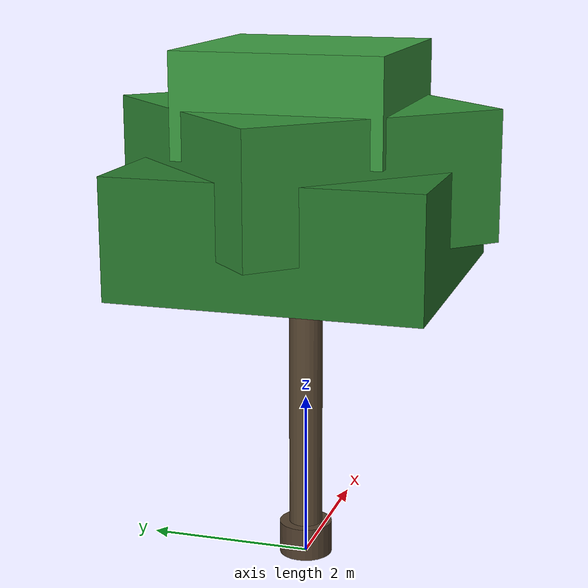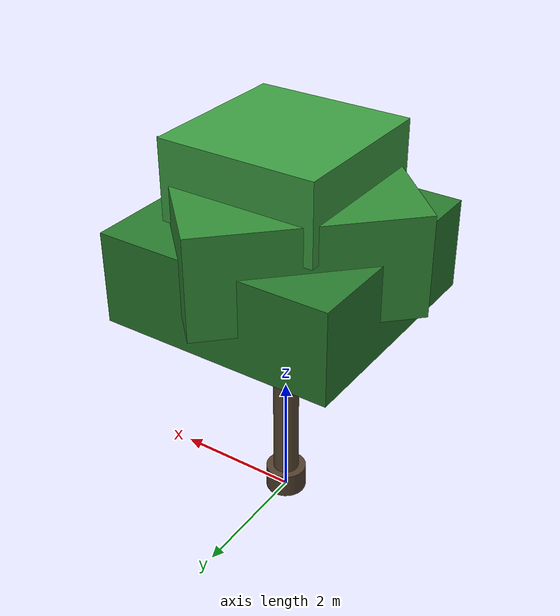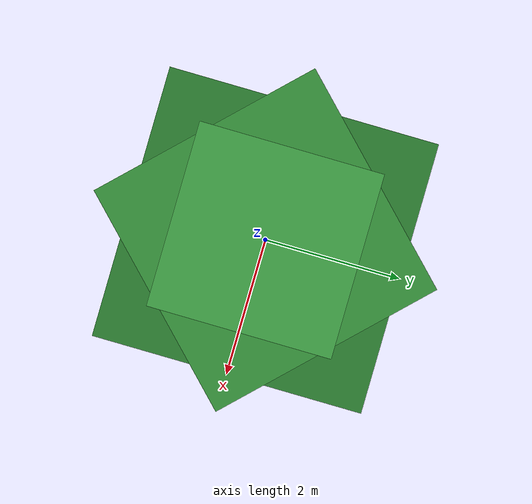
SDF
<?xml version="1.0" ?>
<sdf version="1.8">
  <model name="street_tree">
    <static>true</static>
    <link name="tree_link">
      <!-- 物理碰撞剛體：僅樹幹圓柱體 (確保物理引擎零負擔，樹冠無碰撞) -->
      <collision name="trunk_col">
        <pose>0 0 2.0 0 0 0</pose>
        <geometry>
          <cylinder><radius>0.20</radius><length>4.0</length></cylinder>
        </geometry>
      </collision>

      <!-- 視覺呈現：主樹幹 (Textured Bark Trunk) -->
      <visual name="trunk_vis">
        <pose>0 0 2.0 0 0 0</pose>
        <geometry>
          <cylinder><radius>0.20</radius><length>4.0</length></cylinder>
        </geometry>
        <material>
          <ambient>0.28 0.22 0.16 1</ambient>
          <diffuse>0.35 0.28 0.20 1</diffuse>
        </material>
      </visual>

      <!-- 視覺呈現：底部樹根微擴展 (Root Flare) -->
      <visual name="root_flare">
        <pose>0 0 0.2 0 0 0</pose>
        <geometry>
          <cylinder><radius>0.32</radius><length>0.4</length></cylinder>
        </geometry>
        <material>
          <ambient>0.26 0.20 0.14 1</ambient>
          <diffuse>0.32 0.25 0.18 1</diffuse>
        </material>
      </visual>

      <!-- 視覺呈現：低多邊形交叉分層樹冠 (X-Plane & Faceted Foliage Canopy) -->
      <!-- 底層主樹冠叢 (Bottom Canopy Cluster) -->
      <visual name="foliage_base">
        <pose>0 0 4.2 0 0 0</pose>
        <geometry>
          <box><size>3.6 3.6 1.4</size></box>
        </geometry>
        <material>
          <ambient>0.12 0.38 0.14 1</ambient>
          <diffuse>0.16 0.48 0.18 1</diffuse>
        </material>
      </visual>

      <!-- 中層旋轉 45 度樹冠叢 (Mid Canopy 45-deg Rotated) -->
      <visual name="foliage_mid">
        <pose>0 0 4.8 0 0 0.785398</pose>
        <geometry>
          <box><size>3.2 3.2 1.5</size></box>
        </geometry>
        <material>
          <ambient>0.15 0.46 0.16 1</ambient>
          <diffuse>0.20 0.56 0.22 1</diffuse>
        </material>
      </visual>

      <!-- 頂部圓拱穹頂樹冠叢 (Top Crown Dome) -->
      <visual name="foliage_top">
        <pose>0 0 5.6 0 0 0</pose>
        <geometry>
          <box><size>2.4 2.4 1.2</size></box>
        </geometry>
        <material>
          <ambient>0.18 0.52 0.18 1</ambient>
          <diffuse>0.24 0.62 0.26 1</diffuse>
        </material>
      </visual>
    </link>
  </model>
</sdf>
